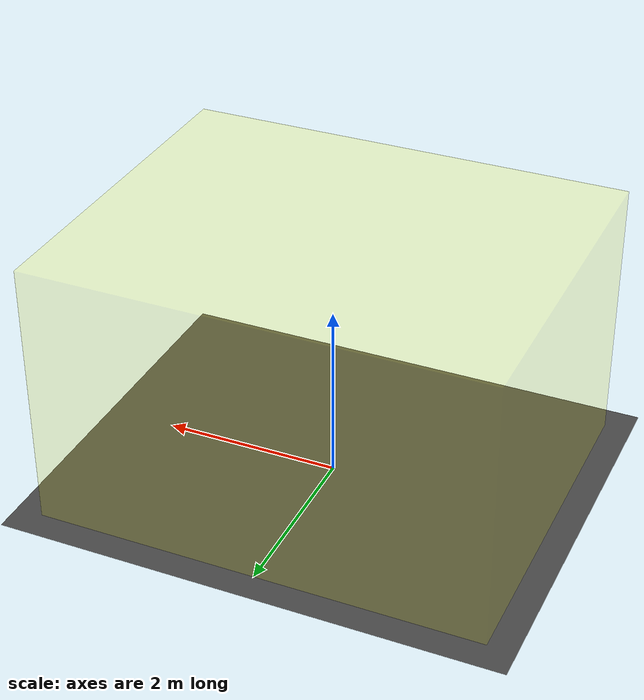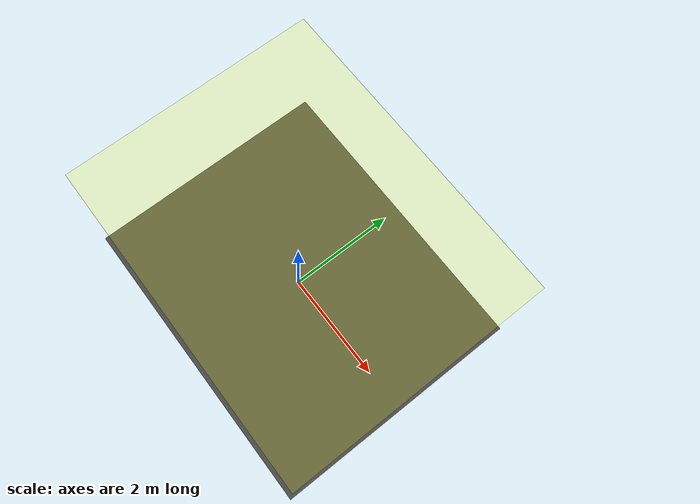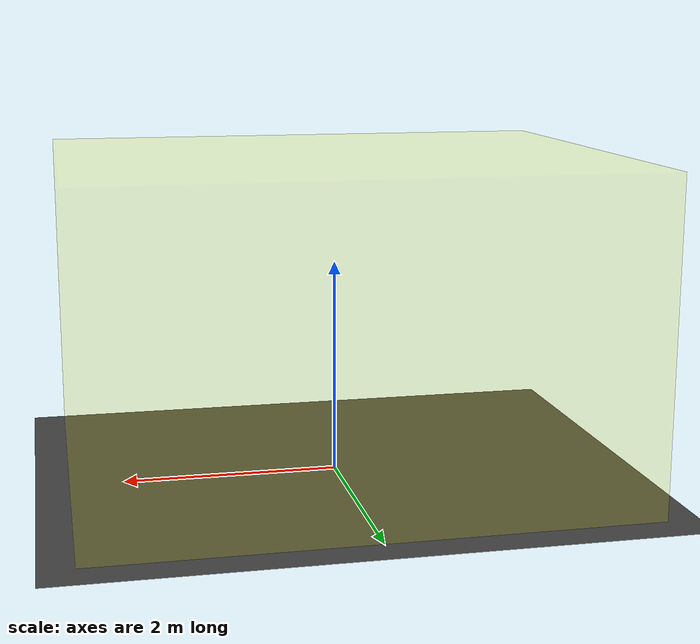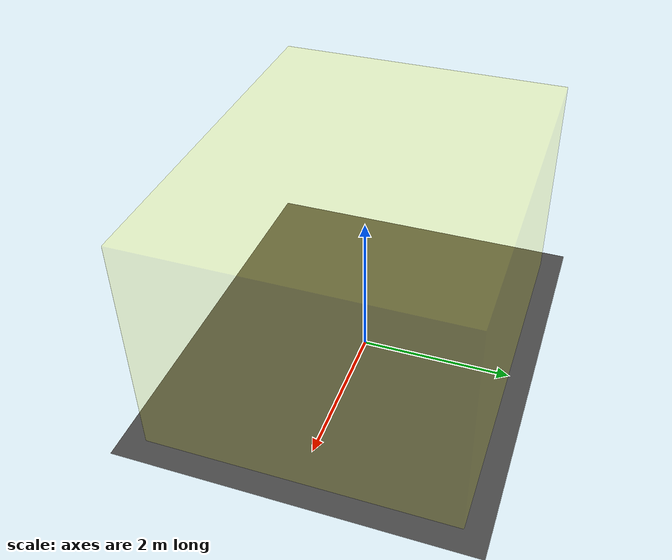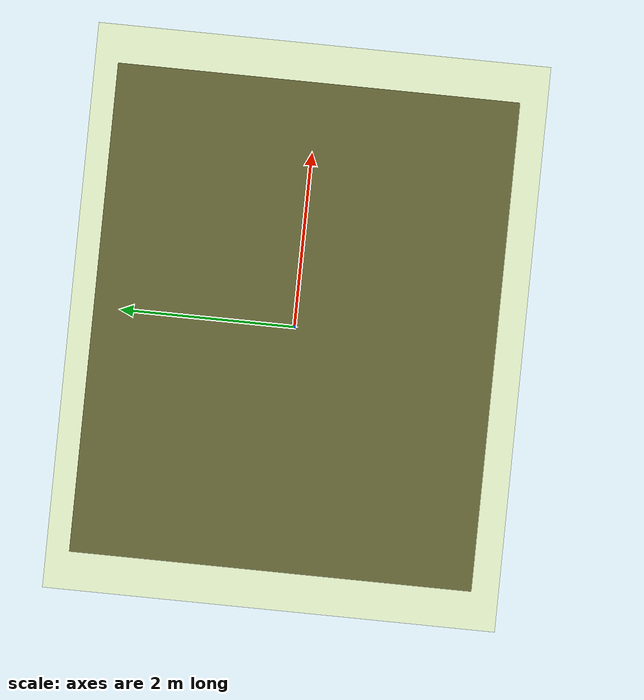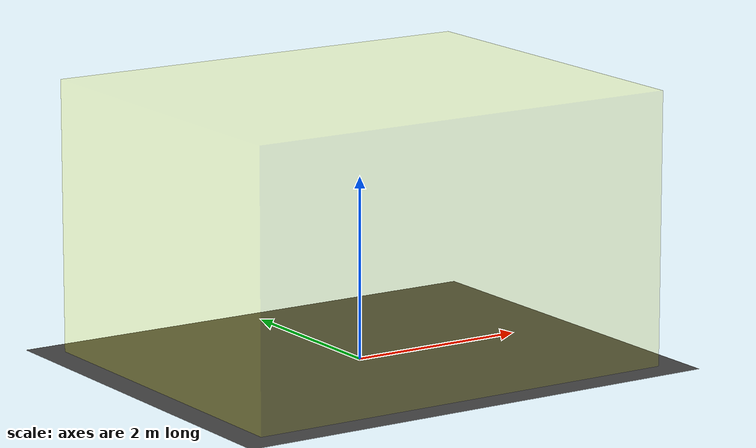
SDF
<?xml version="1.0"?>
<sdf version="1.9">
  <world name="formation_world">
    <physics name="1ms" type="ignored">
      <max_step_size>0.001</max_step_size>
      <real_time_factor>1.0</real_time_factor>
    </physics>

    <plugin filename="ignition-gazebo-physics-system" name="ignition::gazebo::systems::Physics"/>
    <plugin filename="ignition-gazebo-scene-broadcaster-system" name="ignition::gazebo::systems::SceneBroadcaster"/>
    <!-- Provides the /world/formation_world/set_pose and light_config
         services used to teleport drones and update LED colour
         kinematically, without physics-driven forces. -->
    <plugin filename="ignition-gazebo-user-commands-system" name="ignition::gazebo::systems::UserCommands"/>

    <light type="directional" name="sun">
      <cast_shadows>true</cast_shadows>
      <pose>0 0 10 0 0 0</pose>
      <diffuse>0.8 0.8 0.8 1</diffuse>
      <direction>-0.3 0.3 -0.9</direction>
    </light>

    <model name="ground_plane">
      <static>true</static>
      <link name="link">
        <collision name="collision">
          <geometry><plane><normal>0 0 1</normal><size>5 4</size></plane></geometry>
        </collision>
        <visual name="visual">
          <geometry><plane><normal>0 0 1</normal><size>5 4</size></plane></geometry>
          <material><ambient>0.3 0.3 0.3 1</ambient></material>
        </visual>
      </link>
    </model>

    <!-- Boundary wireframe: visual-only reference for the
         5m(x) x 4m(y) x 3m(z) ENU flight volume -->
    <model name="boundary_marker">
      <static>true</static>
      <link name="link">
        <visual name="v"><pose>0 0 1.5 0 0 0</pose>
          <geometry><box><size>5 4 3</size></box></geometry>
          <material><ambient>1 1 0 0.1</ambient><diffuse>1 1 0 0.1</diffuse></material>
          <transparency>0.9</transparency>
        </visual>
      </link>
    </model>
  </world>
</sdf>
